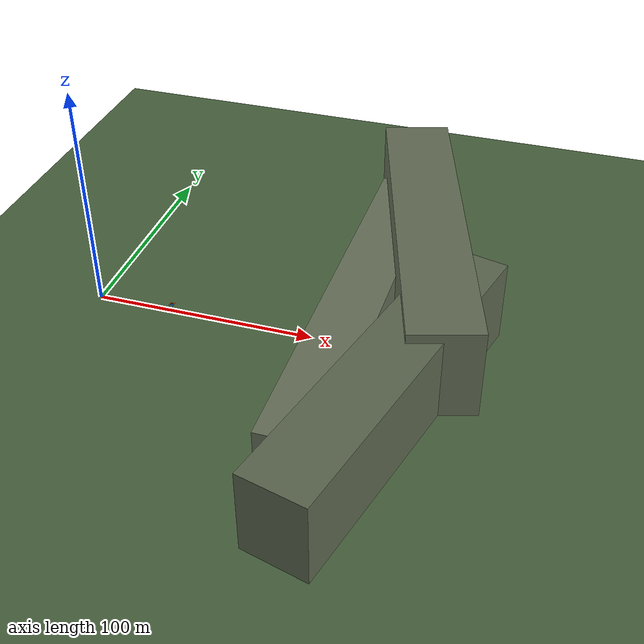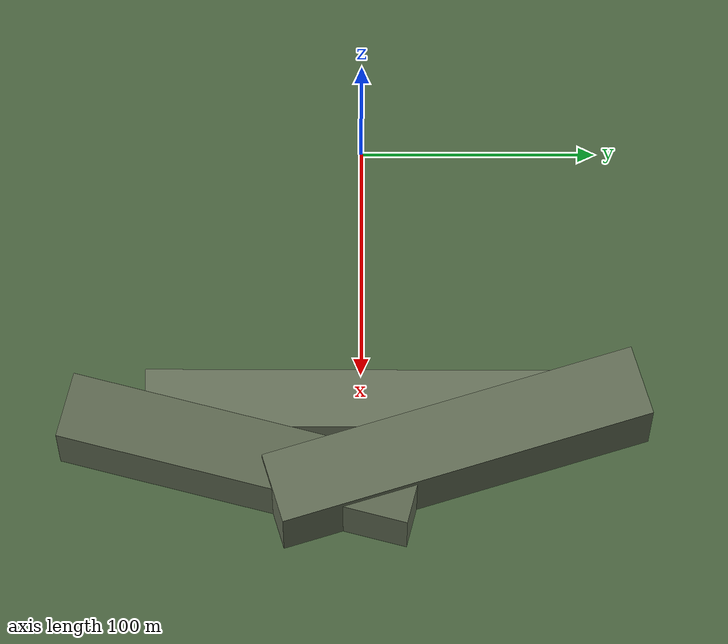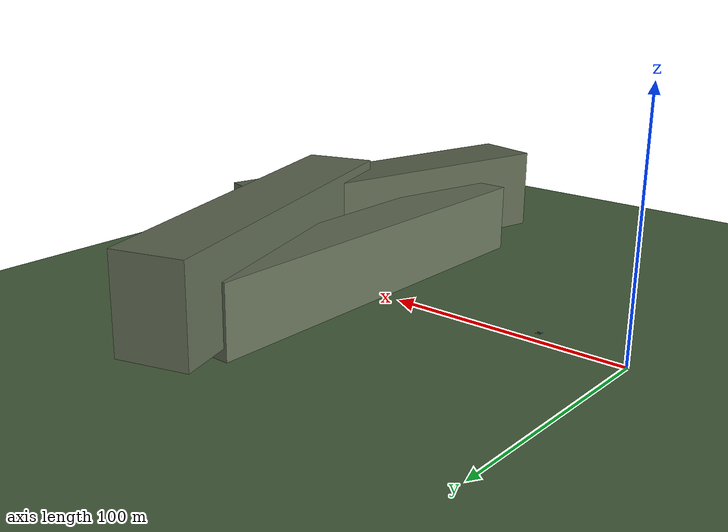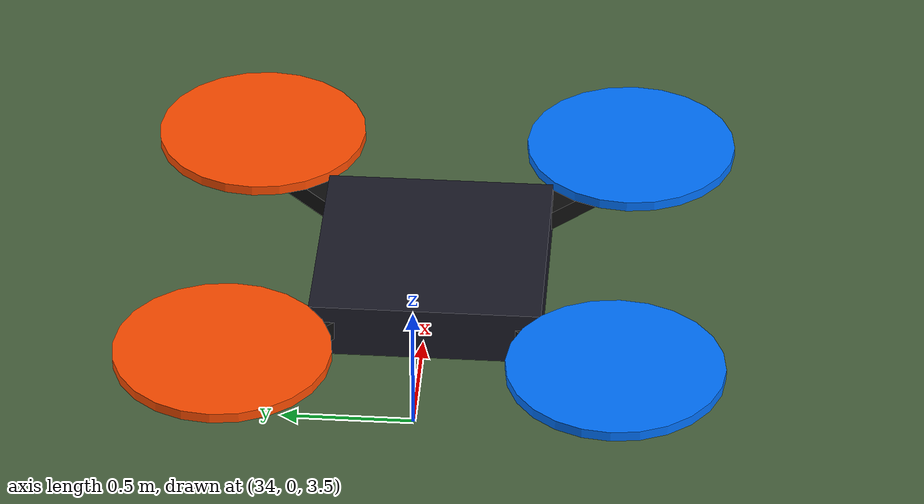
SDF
<?xml version="1.0" ?>
<sdf version="1.6">
  <world name="aiming_test">
    <physics name="1ms" type="ignored">
      <max_step_size>0.001</max_step_size>
      <real_time_factor>1.0</real_time_factor>
    </physics>
    <plugin filename="gz-sim-physics-system" name="gz::sim::systems::Physics"></plugin>
    <plugin filename="gz-sim-user-commands-system" name="gz::sim::systems::UserCommands"></plugin>
    <plugin filename="gz-sim-scene-broadcaster-system" name="gz::sim::systems::SceneBroadcaster"></plugin>
    <plugin filename="gz-sim-contact-system" name="gz::sim::systems::Contact"></plugin>
    <plugin filename="gz-sim-imu-system" name="gz::sim::systems::Imu"></plugin>
    <plugin filename="gz-sim-sensors-system" name="gz::sim::systems::Sensors">
      <render_engine>ogre2</render_engine>
    </plugin>

    <!-- [1. 실감형 파란 하늘 스카이박스 및 대기 환경] -->
    <scene>
      <ambient>0.6 0.65 0.75 1.0</ambient>
      <background>0.5 0.68 0.88 1.0</background>
      <shadows>true</shadows>
      <sky>
        <time>12.0</time>
        <sunrise>6.0</sunrise>
        <sunset>18.0</sunset>
        <clouds>
          <speed>10.0</speed>
          <humidity>0.4</humidity>
          <mean_size>0.6</mean_size>
        </clouds>
      </sky>
    </scene>

    <!-- [2. 실시간 태양광 조명] -->
    <light type="directional" name="sun">
      <cast_shadows>true</cast_shadows>
      <pose>0 0 100 0 0 0</pose>
      <diffuse>0.95 0.95 0.90 1</diffuse>
      <specular>0.3 0.3 0.3 1</specular>
      <direction>-0.4 0.2 -0.9</direction>
    </light>

    <!-- [3. 500m 대형 실감 사격 훈련장 대지] -->
    <model name="ground_plane">
      <static>true</static>
      <link name="link">
        <collision name="collision">
          <geometry><plane><normal>0 0 1</normal><size>500 500</size></plane></geometry>
        </collision>
        <visual name="visual">
          <geometry><plane><normal>0 0 1</normal><size>500 500</size></plane></geometry>
          <material>
            <ambient>0.26 0.35 0.22 1</ambient>
            <diffuse>0.28 0.38 0.24 1</diffuse>
            <specular>0.05 0.05 0.05 1</specular>
          </material>
        </visual>
      </link>
    </model>

    <!-- [4. 원거리 산악 지형 랜드스케이프] -->
    <model name="mountain_ridge_north">
      <static>true</static>
      <pose>120 0 15 0 0 0</pose>
      <link name="link">
        <visual name="ridge1">
          <pose>0 0 0 0 0 0</pose>
          <geometry><box><size>25 180 30</size></box></geometry>
          <material>
            <ambient>0.35 0.38 0.30 1</ambient>
            <diffuse>0.40 0.44 0.35 1</diffuse>
          </material>
        </visual>
        <visual name="ridge2">
          <pose>20 40 10 0 0 0.3</pose>
          <geometry><box><size>30 160 40</size></box></geometry>
          <material>
            <ambient>0.32 0.35 0.28 1</ambient>
            <diffuse>0.38 0.42 0.33 1</diffuse>
          </material>
        </visual>
        <visual name="ridge3">
          <pose>25 -50 8 0 0 -0.25</pose>
          <geometry><box><size>28 150 36</size></box></geometry>
          <material>
            <ambient>0.30 0.33 0.26 1</ambient>
            <diffuse>0.36 0.40 0.31 1</diffuse>
          </material>
        </visual>
      </link>
    </model>

    <!-- [5. 정밀 스마트 스코프 거치 소총 사격대 (Rifle & SMASH Smart Scope Platform)] -->
    <model name="platform">
      <static>false</static>
      <pose>0 0 1.2 0 0 0</pose>
      <link name="base_link">
        <gravity>false</gravity>
        <inertial>
          <mass>3.5</mass>
          <inertia>
            <ixx>0.05</ixx><iyy>0.05</iyy><izz>0.05</izz>
          </inertia>
        </inertial>

        <!-- (1) 전술 삼각대 다리 3개 (Tactical Tripod Legs) -->
        <visual name="tripod_center">
          <pose>0 0 -0.35 0 0 0</pose>
          <geometry><cylinder><radius>0.04</radius><length>0.7</length></cylinder></geometry>
          <material><ambient>0.1 0.1 0.1 1</ambient><diffuse>0.15 0.15 0.15 1</diffuse></material>
        </visual>
        <visual name="tripod_leg1">
          <pose>-0.25 0.25 -0.75 0.4 0.4 0</pose>
          <geometry><cylinder><radius>0.025</radius><length>0.85</length></cylinder></geometry>
          <material><ambient>0.1 0.1 0.1 1</ambient><diffuse>0.15 0.15 0.15 1</diffuse></material>
        </visual>
        <visual name="tripod_leg2">
          <pose>-0.25 -0.25 -0.75 -0.4 0.4 0</pose>
          <geometry><cylinder><radius>0.025</radius><length>0.85</length></cylinder></geometry>
          <material><ambient>0.1 0.1 0.1 1</ambient><diffuse>0.15 0.15 0.15 1</diffuse></material>
        </visual>
        <visual name="tripod_leg3">
          <pose>0.35 0 -0.75 0 -0.45 0</pose>
          <geometry><cylinder><radius>0.025</radius><length>0.85</length></cylinder></geometry>
          <material><ambient>0.1 0.1 0.1 1</ambient><diffuse>0.15 0.15 0.15 1</diffuse></material>
        </visual>

        <!-- (2) 소총 리시버/몸통 (Rifle Main Receiver) -->
        <visual name="rifle_body">
          <pose>0.15 0 0.05 0 0 0</pose>
          <geometry><box><size>0.65 0.08 0.14</size></box></geometry>
          <material><ambient>0.12 0.13 0.15 1</ambient><diffuse>0.18 0.20 0.22 1</diffuse></material>
        </visual>

        <!-- (3) 소총 개머리판 (Rifle Stock) -->
        <visual name="rifle_stock">
          <pose>-0.32 0 0.03 0 0.1 0</pose>
          <geometry><box><size>0.32 0.06 0.16</size></box></geometry>
          <material><ambient>0.1 0.1 0.1 1</ambient><diffuse>0.15 0.15 0.15 1</diffuse></material>
        </visual>

        <!-- (4) 소총 권총손잡이 (Pistol Grip) -->
        <visual name="rifle_grip">
          <pose>-0.05 0 -0.12 0 0.35 0</pose>
          <geometry><box><size>0.07 0.05 0.18</size></box></geometry>
          <material><ambient>0.08 0.08 0.08 1</ambient><diffuse>0.12 0.12 0.12 1</diffuse></material>
        </visual>

        <!-- (5) 소총 30발 곡선 탄창 (30-round Magazine) -->
        <visual name="rifle_mag">
          <pose>0.18 0 -0.16 0 0.25 0</pose>
          <geometry><box><size>0.09 0.04 0.24</size></box></geometry>
          <material><ambient>0.05 0.05 0.05 1</ambient><diffuse>0.1 0.1 0.1 1</diffuse></material>
        </visual>

        <!-- (6) 소총 롱 총열 및 총구 소염기 (Barrel & Flash Hider) -->
        <visual name="rifle_barrel">
          <pose>0.65 0 0.06 0 1.5708 0</pose>
          <geometry><cylinder><radius>0.022</radius><length>0.48</length></cylinder></geometry>
          <material><ambient>0.08 0.08 0.1 1</ambient><diffuse>0.12 0.12 0.15 1</diffuse></material>
        </visual>
        <visual name="flash_hider">
          <pose>0.90 0 0.06 0 1.5708 0</pose>
          <geometry><cylinder><radius>0.028</radius><length>0.06</length></cylinder></geometry>
          <material><ambient>0.05 0.05 0.05 1</ambient><diffuse>0.08 0.08 0.08 1</diffuse></material>
        </visual>

        <!-- (7) 상단 장착 [SMASH 지능형 스마트 스코프] 광학 하우징 본체 -->
        <visual name="smart_scope_mount">
          <pose>0.20 0 0.16 0 0 0</pose>
          <geometry><box><size>0.28 0.06 0.06</size></box></geometry>
          <material><ambient>0.08 0.08 0.08 1</ambient><diffuse>0.12 0.12 0.12 1</diffuse></material>
        </visual>
        <visual name="smart_scope_body">
          <pose>0.22 0 0.24 0 0 0</pose>
          <geometry><box><size>0.34 0.12 0.12</size></box></geometry>
          <material><ambient>0.18 0.22 0.26 1</ambient><diffuse>0.25 0.30 0.36 1</diffuse></material>
        </visual>
        <visual name="smart_scope_hood">
          <pose>0.41 0 0.24 0 1.5708 0</pose>
          <geometry><cylinder><radius>0.055</radius><length>0.06</length></cylinder></geometry>
          <material><ambient>0.05 0.05 0.05 1</ambient><diffuse>0.08 0.08 0.08 1</diffuse></material>
        </visual>

        <!-- 센서 디바이스 -->
        <sensor name="imu_sensor" type="imu">
          <always_on>1</always_on>
          <update_rate>50</update_rate>
          <topic>platform/imu</topic>
        </sensor>
        <sensor name="camera" type="camera">
          <pose>0.45 0 0.24 0 0 0</pose>
          <always_on>1</always_on>
          <update_rate>30</update_rate>
          <camera>
            <horizontal_fov>0.85</horizontal_fov>
            <image>
              <width>640</width>
              <height>480</height>
              <format>R8G8B8</format>
            </image>
            <clip>
              <near>0.1</near>
              <far>1000</far>
            </clip>
          </camera>
          <topic>platform/camera/image</topic>
        </sensor>
        <sensor name="laser" type="gpu_lidar">
          <pose>0.45 0 0.28 0 0 0</pose>
          <always_on>1</always_on>
          <update_rate>30</update_rate>
          <lidar>
            <scan>
              <horizontal>
                <samples>1</samples>
                <resolution>1</resolution>
                <min_angle>0</min_angle>
                <max_angle>0</max_angle>
              </horizontal>
            </scan>
            <range>
              <min>0.1</min>
              <max>500.0</max>
              <resolution>0.01</resolution>
            </range>
          </lidar>
          <topic>platform/laser/scan</topic>
        </sensor>
      </link>
      <plugin filename="gz-sim-pose-publisher-system" name="gz::sim::systems::PosePublisher">
        <publish_link_pose>true</publish_link_pose>
        <publish_model_pose>true</publish_model_pose>
        <use_pose_vector_msg>false</use_pose_vector_msg>
        <static_publisher>true</static_publisher>
        <static_update_frequency>50</static_update_frequency>
      </plugin>
    </model>

    <!-- 대형 3D 타겟 쿼드콥터 드론 (전방 35m 상공 정지 호버링) -->
    <model name="target">
      <static>false</static>
      <pose>35 0 3.5 0 0 0</pose>
      <link name="body">
        <gravity>false</gravity>
        <inertial>
          <mass>1.5</mass>
          <inertia>
            <ixx>0.01</ixx><iyy>0.01</iyy><izz>0.01</izz>
          </inertia>
        </inertial>
        <!-- 중앙 블랙 카본 바디 -->
        <visual name="core_visual">
          <geometry><box><size>0.9 0.9 0.22</size></box></geometry>
          <material>
            <ambient>0.1 0.1 0.15 1</ambient>
            <diffuse>0.1 0.1 0.15 1</diffuse>
          </material>
        </visual>
        <!-- 4개 로터 암 (폭 2.2m) -->
        <visual name="arm_cross1">
          <pose>0 0 0 0 0 0.785</pose>
          <geometry><box><size>2.2 0.14 0.08</size></box></geometry>
          <material><ambient>0.05 0.05 0.05 1</ambient><diffuse>0.05 0.05 0.05 1</diffuse></material>
        </visual>
        <visual name="arm_cross2">
          <pose>0 0 0 0 0 -0.785</pose>
          <geometry><box><size>2.2 0.14 0.08</size></box></geometry>
          <material><ambient>0.05 0.05 0.05 1</ambient><diffuse>0.05 0.05 0.05 1</diffuse></material>
        </visual>
        <!-- 형광 오렌지 전방 로터 2개 -->
        <visual name="rotor1">
          <pose>0.75 0.75 0.1 0 0 0</pose>
          <geometry><cylinder><radius>0.42</radius><length>0.04</length></cylinder></geometry>
          <material><ambient>1.0 0.3 0.0 1</ambient><diffuse>1.0 0.3 0.0 1</diffuse></material>
        </visual>
        <visual name="rotor2">
          <pose>-0.75 0.75 0.1 0 0 0</pose>
          <geometry><cylinder><radius>0.42</radius><length>0.04</length></cylinder></geometry>
          <material><ambient>1.0 0.3 0.0 1</ambient><diffuse>1.0 0.3 0.0 1</diffuse></material>
        </visual>
        <!-- 형광 블루 후방 로터 2개 -->
        <visual name="rotor3">
          <pose>0.75 -0.75 0.1 0 0 0</pose>
          <geometry><cylinder><radius>0.42</radius><length>0.04</length></cylinder></geometry>
          <material><ambient>0.0 0.45 1.0 1</ambient><diffuse>0.0 0.45 1.0 1</diffuse></material>
        </visual>
        <visual name="rotor4">
          <pose>-0.75 -0.75 0.1 0 0 0</pose>
          <geometry><cylinder><radius>0.42</radius><length>0.04</length></cylinder></geometry>
          <material><ambient>0.0 0.45 1.0 1</ambient><diffuse>0.0 0.45 1.0 1</diffuse></material>
        </visual>
      </link>
      <plugin filename="gz-sim-pose-publisher-system" name="gz::sim::systems::PosePublisher">
        <publish_link_pose>true</publish_link_pose>
        <publish_model_pose>true</publish_model_pose>
        <use_pose_vector_msg>false</use_pose_vector_msg>
        <static_publisher>true</static_publisher>
        <static_update_frequency>50</static_update_frequency>
      </plugin>
    </model>
  </world>
</sdf>
